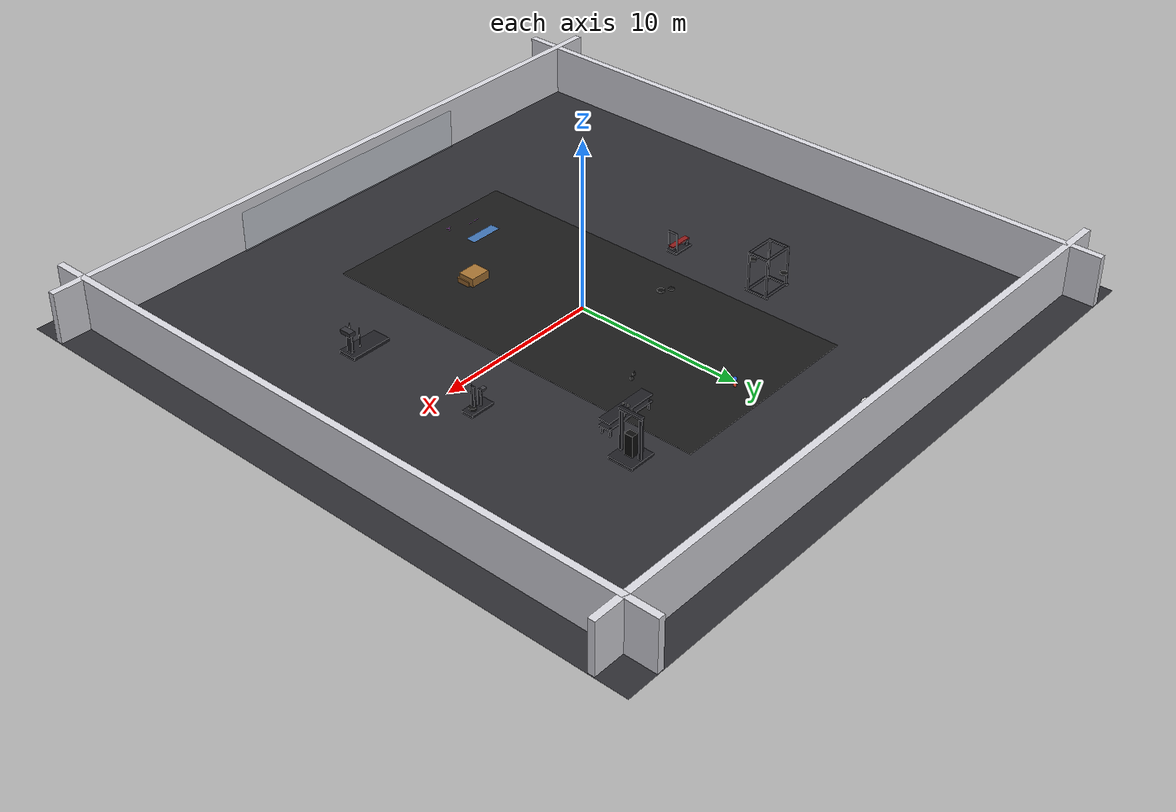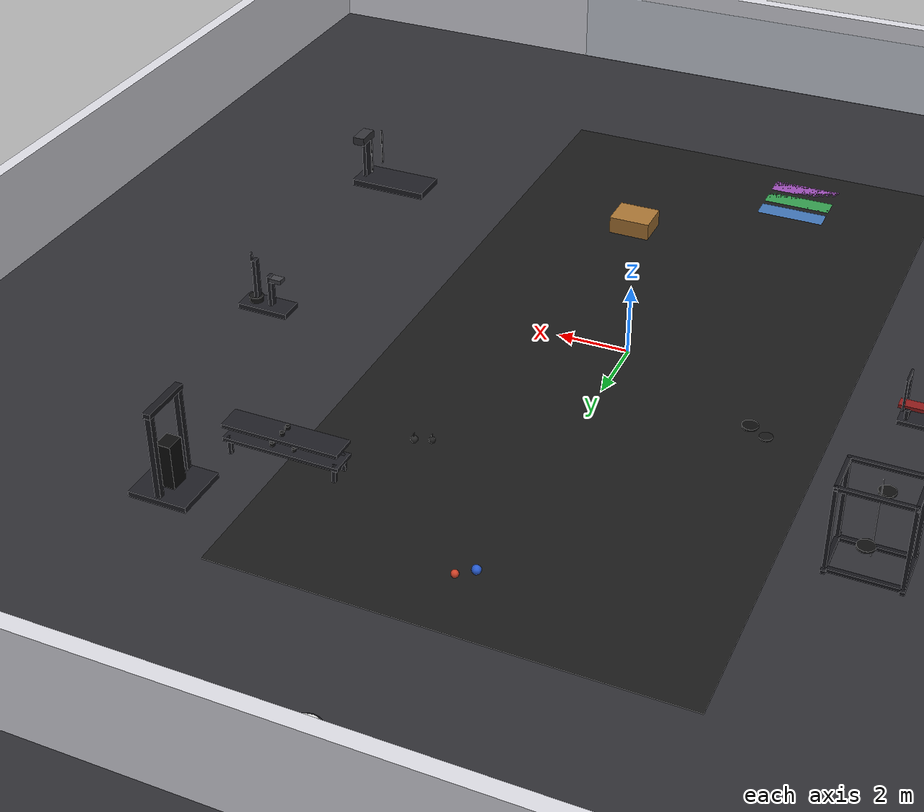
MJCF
<mujoco model="gym_scene">
  <compiler angle="degree" coordinate="local" inertiafromgeom="true"/>
  <option timestep="0.002" gravity="0 0 -9.81" integrator="RK4"/>

  <worldbody>
    <!-- Lighting -->
    <light name="main_light" pos="0 0 6" dir="0 0 -1" diffuse="1 1 1" specular="0.2 0.2 0.2"/>
    <light name="fill_light" pos="4 4 4" dir="-1 -1 -1" diffuse="0.6 0.6 0.6" specular="0.1 0.1 0.1"/>

    <!-- Floor -->
    <geom name="floor" type="plane" pos="0 0 0" size="20 20 0.1" rgba="0.18 0.18 0.20 1" friction="1.2 0.8 0.01"/>

    <!-- Walls (simple perimeter) -->
    <geom name="wall_n" type="box" pos="0 18 1.5" size="20 0.2 1.5" rgba="0.85 0.85 0.88 1" contype="1" conaffinity="1"/>
    <geom name="wall_s" type="box" pos="0 -18 1.5" size="20 0.2 1.5" rgba="0.85 0.85 0.88 1" contype="1" conaffinity="1"/>
    <geom name="wall_e" type="box" pos="18 0 1.5" size="0.2 20 1.5" rgba="0.85 0.85 0.88 1" contype="1" conaffinity="1"/>
    <geom name="wall_w" type="box" pos="-18 0 1.5" size="0.2 20 1.5" rgba="0.85 0.85 0.88 1" contype="1" conaffinity="1"/>

    <!-- Rubber mat area -->
    <geom name="mat_strip" type="box" pos="0 0 0.01" size="6 12 0.01" rgba="0.10 0.10 0.10 1" friction="1.4 1.0 0.02"/>

    <!-- Equipment: Power Rack     -->
    <body name="power_rack" pos="-8 6 0">
      <!-- Uprights -->
      <geom name="rack_upright_fl" type="box" pos="0.9 0.6 1.2" size="0.05 0.05 1.2" rgba="0.10 0.10 0.12 1"/>
      <geom name="rack_upright_fr" type="box" pos="0.9 -0.6 1.2" size="0.05 0.05 1.2" rgba="0.10 0.10 0.12 1"/>
      <geom name="rack_upright_bl" type="box" pos="-0.9 0.6 1.2" size="0.05 0.05 1.2" rgba="0.10 0.10 0.12 1"/>
      <geom name="rack_upright_br" type="box" pos="-0.9 -0.6 1.2" size="0.05 0.05 1.2" rgba="0.10 0.10 0.12 1"/>

      <!-- Top frame -->
      <geom name="rack_top_l" type="box" pos="0 0.6 2.35" size="0.95 0.05 0.05" rgba="0.10 0.10 0.12 1"/>
      <geom name="rack_top_r" type="box" pos="0 -0.6 2.35" size="0.95 0.05 0.05" rgba="0.10 0.10 0.12 1"/>
      <geom name="rack_top_f" type="box" pos="0.9 0 2.35" size="0.05 0.65 0.05" rgba="0.10 0.10 0.12 1"/>
      <geom name="rack_top_b" type="box" pos="-0.9 0 2.35" size="0.05 0.65 0.05" rgba="0.10 0.10 0.12 1"/>

      <!-- Base feet -->
      <geom name="rack_base_f" type="box" pos="0.9 0 0.05" size="0.06 0.75 0.05" rgba="0.08 0.08 0.10 1"/>
      <geom name="rack_base_b" type="box" pos="-0.9 0 0.05" size="0.06 0.75 0.05" rgba="0.08 0.08 0.10 1"/>
      <geom name="rack_base_l" type="box" pos="0 0.6 0.05" size="0.95 0.06 0.05" rgba="0.08 0.08 0.10 1"/>
      <geom name="rack_base_r" type="box" pos="0 -0.6 0.05" size="0.95 0.06 0.05" rgba="0.08 0.08 0.10 1"/>
    </body>

    <!-- Barbell (movable) -->
    <body name="barbell" pos="-8 6 1.35">
      <freejoint name="barbell_free"/>
      <geom name="bar_shaft" type="cylinder" pos="0 0 0" size="0.014 1.1" rgba="0.75 0.75 0.78 1" friction="0.8 0.2 0.01"/>
      <!-- Plates -->
      <geom name="plate_l_outer" type="cylinder" pos="0 1.05 0" size="0.22 0.03" rgba="0.06 0.06 0.06 1"/>
      <geom name="plate_l_inner" type="cylinder" pos="0 0.98 0" size="0.18 0.025" rgba="0.10 0.10 0.10 1"/>
      <geom name="plate_r_outer" type="cylinder" pos="0 -1.05 0" size="0.22 0.03" rgba="0.06 0.06 0.06 1"/>
      <geom name="plate_r_inner" type="cylinder" pos="0 -0.98 0" size="0.18 0.025" rgba="0.10 0.10 0.10 1"/>
    </body>

    <!-- Bench Press Station       -->
    <body name="bench_press" pos="-8 0 0">
      <!-- Bench base -->
      <geom name="bench_base" type="box" pos="0 0 0.06" size="0.65 0.35 0.06" rgba="0.12 0.12 0.14 1"/>
      <!-- Legs -->
      <geom name="bench_leg_f" type="box" pos="0.45 0 0.20" size="0.05 0.25 0.20" rgba="0.10 0.10 0.12 1"/>
      <geom name="bench_leg_b" type="box" pos="-0.45 0 0.20" size="0.05 0.25 0.20" rgba="0.10 0.10 0.12 1"/>
      <!-- Pad -->
      <geom name="bench_pad" type="box" pos="0 0 0.42" size="0.70 0.16 0.05" rgba="0.55 0.10 0.10 1"/>
      <!-- Simple uprights -->
      <geom name="bench_upright_l" type="box" pos="0.55 0.28 0.85" size="0.03 0.03 0.45" rgba="0.10 0.10 0.12 1"/>
      <geom name="bench_upright_r" type="box" pos="0.55 -0.28 0.85" size="0.03 0.03 0.45" rgba="0.10 0.10 0.12 1"/>
      <geom name="bench_crossbar" type="box" pos="0.55 0 1.28" size="0.03 0.30 0.03" rgba="0.10 0.10 0.12 1"/>
    </body>

    <!-- Dumbbell rack -->
    <body name="dumbbell_rack" pos="6 8 0">
      <geom name="db_rack_frame" type="box" pos="0 0 0.45" size="1.6 0.35 0.05" rgba="0.12 0.12 0.14 1"/>
      <geom name="db_rack_frame2" type="box" pos="0 0 0.85" size="1.6 0.35 0.05" rgba="0.12 0.12 0.14 1"/>
      <geom name="db_rack_leg_fl" type="box" pos="1.45 0.25 0.25" size="0.05 0.05 0.25" rgba="0.10 0.10 0.12 1"/>
      <geom name="db_rack_leg_fr" type="box" pos="1.45 -0.25 0.25" size="0.05 0.05 0.25" rgba="0.10 0.10 0.12 1"/>
      <geom name="db_rack_leg_bl" type="box" pos="-1.45 0.25 0.25" size="0.05 0.05 0.25" rgba="0.10 0.10 0.12 1"/>
      <geom name="db_rack_leg_br" type="box" pos="-1.45 -0.25 0.25" size="0.05 0.05 0.25" rgba="0.10 0.10 0.12 1"/>
    </body>

    <!-- A few dumbbells (movable) -->
    <body name="dumbbell_1" pos="6 8 0.95">
      <freejoint name="dumbbell_1_free"/>
      <geom name="db1_handle" type="cylinder" pos="0 0 0" size="0.015 0.12" rgba="0.70 0.70 0.72 1"/>
      <geom name="db1_head_l" type="cylinder" pos="0 0.14 0" size="0.06 0.05" rgba="0.05 0.05 0.05 1"/>
      <geom name="db1_head_r" type="cylinder" pos="0 -0.14 0" size="0.06 0.05" rgba="0.05 0.05 0.05 1"/>
    </body>

    <body name="dumbbell_2" pos="6.3 8 0.55">
      <freejoint name="dumbbell_2_free"/>
      <geom name="db2_handle" type="cylinder" pos="0 0 0" size="0.015 0.12" rgba="0.70 0.70 0.72 1"/>
      <geom name="db2_head_l" type="cylinder" pos="0 0.14 0" size="0.07 0.06" rgba="0.06 0.06 0.06 1"/>
      <geom name="db2_head_r" type="cylinder" pos="0 -0.14 0" size="0.07 0.06" rgba="0.06 0.06 0.06 1"/>
    </body>

    <body name="dumbbell_3" pos="5.7 8 0.55">
      <freejoint name="dumbbell_3_free"/>
      <geom name="db3_handle" type="cylinder" pos="0 0 0" size="0.015 0.12" rgba="0.70 0.70 0.72 1"/>
      <geom name="db3_head_l" type="cylinder" pos="0 0.14 0" size="0.05 0.04" rgba="0.06 0.06 0.06 1"/>
      <geom name="db3_head_r" type="cylinder" pos="0 -0.14 0" size="0.05 0.04" rgba="0.06 0.06 0.06 1"/>
    </body>

    <!-- Kettlebells (movable)     -->
    <body name="kettlebell_1" pos="3 6 0.12">
      <freejoint name="kb1_free"/>
      <geom name="kb1_ball" type="sphere" pos="0 0 0.09" size="0.09" rgba="0.12 0.12 0.12 1"/>
      <geom name="kb1_handle" type="capsule" pos="0 0 0.18" size="0.02 0.07" rgba="0.20 0.20 0.20 1"/>
    </body>

    <body name="kettlebell_2" pos="3.4 6.2 0.15">
      <freejoint name="kb2_free"/>
      <geom name="kb2_ball" type="sphere" pos="0 0 0.10" size="0.10" rgba="0.15 0.15 0.15 1"/>
      <geom name="kb2_handle" type="capsule" pos="0 0 0.20" size="0.02 0.08" rgba="0.22 0.22 0.22 1"/>
    </body>

    <!-- Plyo Boxes (stack)        -->
    <body name="plyo_box_big" pos="2 -6 0.25">
      <geom name="plyo_big" type="box" pos="0 0 0.25" size="0.6 0.5 0.25" rgba="0.65 0.45 0.20 1" friction="1.1 0.9 0.02"/>
    </body>

    <body name="plyo_box_small" pos="2.2 -6.2 0.15">
      <geom name="plyo_small" type="box" pos="0 0 0.15" size="0.45 0.4 0.15" rgba="0.60 0.40 0.18 1" friction="1.1 0.9 0.02"/>
    </body>

    <!-- Treadmill (static)        -->
    <body name="treadmill" pos="10 -6 0">
      <!-- Base platform -->
      <geom name="tm_base" type="box" pos="0 0 0.10" size="1.2 0.55 0.10" rgba="0.12 0.12 0.14 1"/>
      <!-- Running deck -->
      <geom name="tm_deck" type="box" pos="-0.1 0 0.14" size="1.0 0.40 0.04" rgba="0.05 0.05 0.05 1" friction="1.3 0.9 0.02"/>
      <!-- Console post -->
      <geom name="tm_post" type="box" pos="0.95 0 0.75" size="0.06 0.20 0.65" rgba="0.12 0.12 0.14 1"/>
      <!-- Console -->
      <geom name="tm_console" type="box" pos="1.05 0 1.45" size="0.18 0.35 0.12" rgba="0.20 0.20 0.22 1"/>
      <!-- Handrails -->
      <geom name="tm_rail_l" type="capsule" pos="0.6 0.35 1.05" size="0.03 0.55" rgba="0.15 0.15 0.16 1"/>
      <geom name="tm_rail_r" type="capsule" pos="0.6 -0.35 1.05" size="0.03 0.55" rgba="0.15 0.15 0.16 1"/>
    </body>

    <!-- Stationary Bike (static)  -->
    <body name="bike" pos="10 2 0">
      <geom name="bike_base" type="box" pos="0 0 0.08" size="0.75 0.35 0.08" rgba="0.12 0.12 0.14 1"/>
      <geom name="bike_post" type="box" pos="-0.15 0 0.55" size="0.06 0.10 0.55" rgba="0.12 0.12 0.14 1"/>
      <geom name="bike_seat" type="box" pos="-0.35 0 1.00" size="0.18 0.12 0.06" rgba="0.25 0.25 0.27 1"/>
      <geom name="bike_handle_post" type="box" pos="0.30 0 0.75" size="0.06 0.10 0.75" rgba="0.12 0.12 0.14 1"/>
      <geom name="bike_handlebar" type="capsule" pos="0.40 0 1.40" size="0.03 0.28" rgba="0.18 0.18 0.20 1"/>
      <geom name="bike_flywheel" type="cylinder" pos="0.35 0 0.25" size="0.20 0.08" rgba="0.08 0.08 0.08 1"/>
    </body>

    <!-- Cable Machine (static)    -->
    <body name="cable_machine" pos="8 10 0">
      <geom name="cm_upright_l" type="box" pos="0 0.6 1.3" size="0.08 0.08 1.3" rgba="0.10 0.10 0.12 1"/>
      <geom name="cm_upright_r" type="box" pos="0 -0.6 1.3" size="0.08 0.08 1.3" rgba="0.10 0.10 0.12 1"/>
      <geom name="cm_top" type="box" pos="0 0 2.55" size="0.10 0.70 0.07" rgba="0.10 0.10 0.12 1"/>
      <geom name="cm_base" type="box" pos="0 0 0.08" size="0.80 0.75 0.08" rgba="0.12 0.12 0.14 1"/>
      <!-- Weight stack block -->
      <geom name="cm_stack" type="box" pos="0 0 0.75" size="0.20 0.25 0.65" rgba="0.05 0.05 0.05 1"/>
    </body>

    <!-- Medicine balls (movable) -->
    <body name="med_ball_1" pos="0 10 0.20">
      <freejoint name="med_ball_1_free"/>
      <geom name="mb1" type="sphere" pos="0 0 0" size="0.12" rgba="0.15 0.35 0.80 1" friction="1.0 0.8 0.02"/>
    </body>

    <body name="med_ball_2" pos="0.4 10.3 0.18">
      <freejoint name="med_ball_2_free"/>
      <geom name="mb2" type="sphere" pos="0 0 0" size="0.10" rgba="0.80 0.25 0.15 1" friction="1.0 0.8 0.02"/>
    </body>

    <!-- Yoga mats (static thin boxes) -->
    <body name="yoga_mats" pos="-2 -10 0">
      <geom name="mat1" type="box" pos="0 0 0.01" size="1.0 0.30 0.01" rgba="0.20 0.60 0.30 1" friction="1.2 0.9 0.02"/>
      <geom name="mat2" type="box" pos="0 -0.8 0.01" size="1.0 0.30 0.01" rgba="0.60 0.30 0.70 1" friction="1.2 0.9 0.02"/>
      <geom name="mat3" type="box" pos="0 0.8 0.01" size="1.0 0.30 0.01" rgba="0.25 0.45 0.70 1" friction="1.2 0.9 0.02"/>
    </body>

    <!-- Mirror panel (decorative: thin box) -->
    <geom name="mirror_panel" type="box" pos="0 -17.6 1.3" size="8 0.03 1.2" rgba="0.75 0.80 0.85 0.35" contype="0" conaffinity="0"/>

    <!-- A few movable bumper plates on the ground -->
    <body name="bumper_plate_1" pos="-4 2 0.05">
      <freejoint name="bp1_free"/>
      <geom name="bp1" type="cylinder" pos="0 0 0" size="0.22 0.03" rgba="0.05 0.05 0.05 1" friction="1.0 0.8 0.02"/>
    </body>

    <body name="bumper_plate_2" pos="-4.5 2.3 0.05">
      <freejoint name="bp2_free"/>
      <geom name="bp2" type="cylinder" pos="0 0 0" size="0.18 0.025" rgba="0.08 0.08 0.08 1" friction="1.0 0.8 0.02"/>
    </body>

    <!-- Simple clock on wall (static) -->
    <body name="wall_clock" pos="0 17.7 2.5">
      <geom name="clock_face" type="cylinder" pos="0 0 0" size="0.35 0.02" rgba="0.95 0.95 0.95 1" contype="0" conaffinity="0"/>
      <geom name="clock_rim" type="cylinder" pos="0 0 0" size="0.38 0.015" rgba="0.10 0.10 0.12 1" contype="0" conaffinity="0"/>
    </body>
  </worldbody>
</mujoco>
